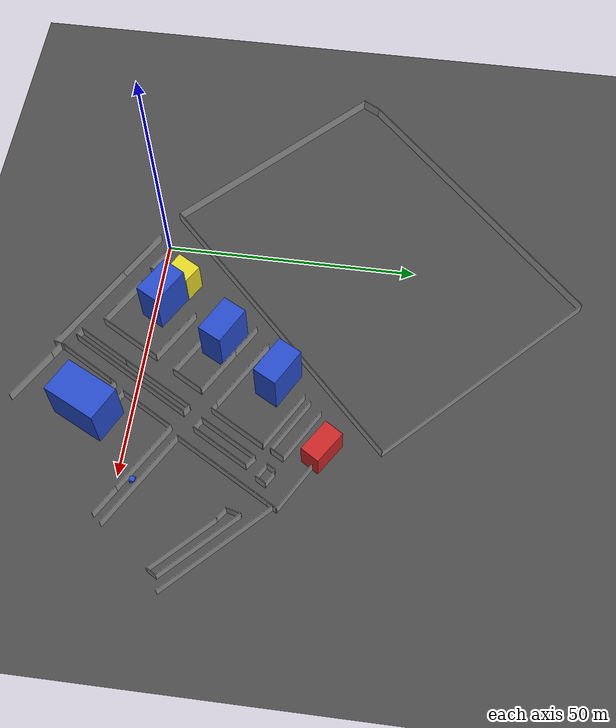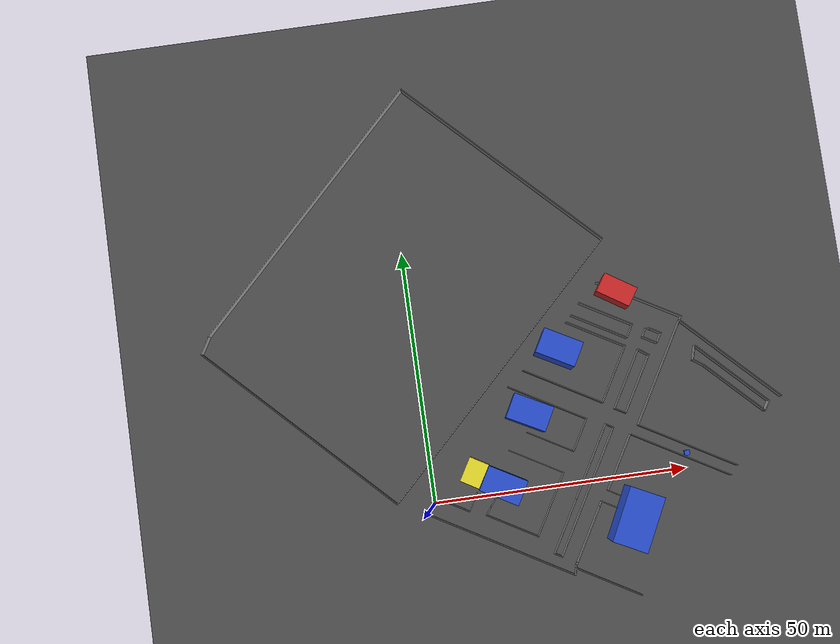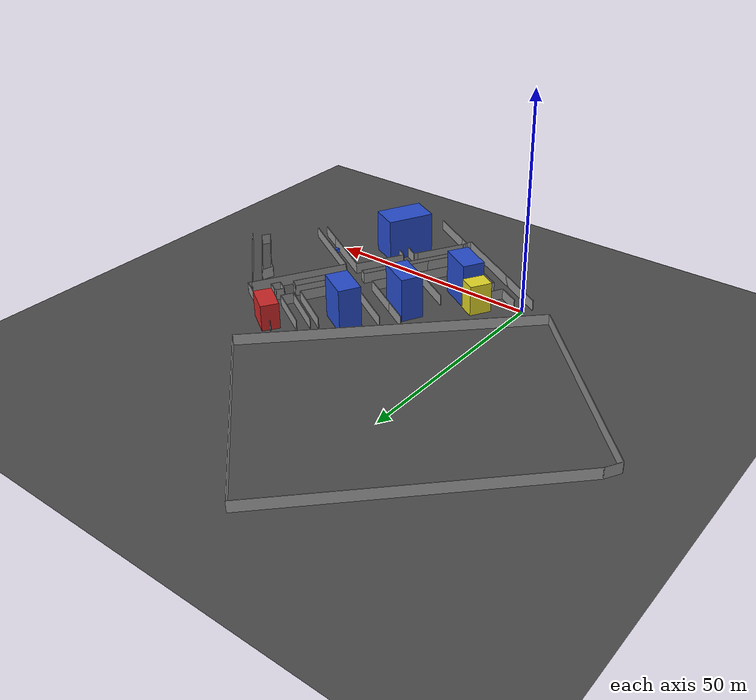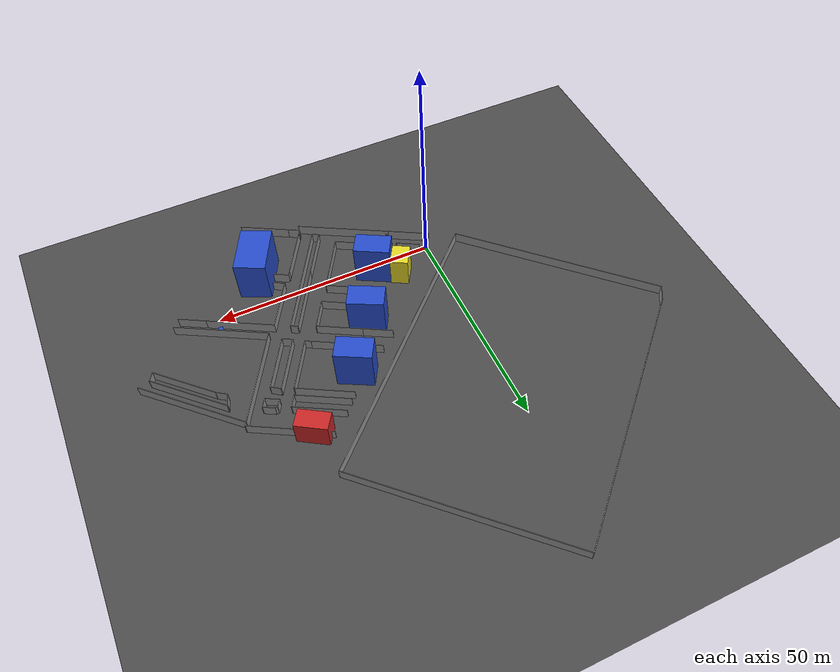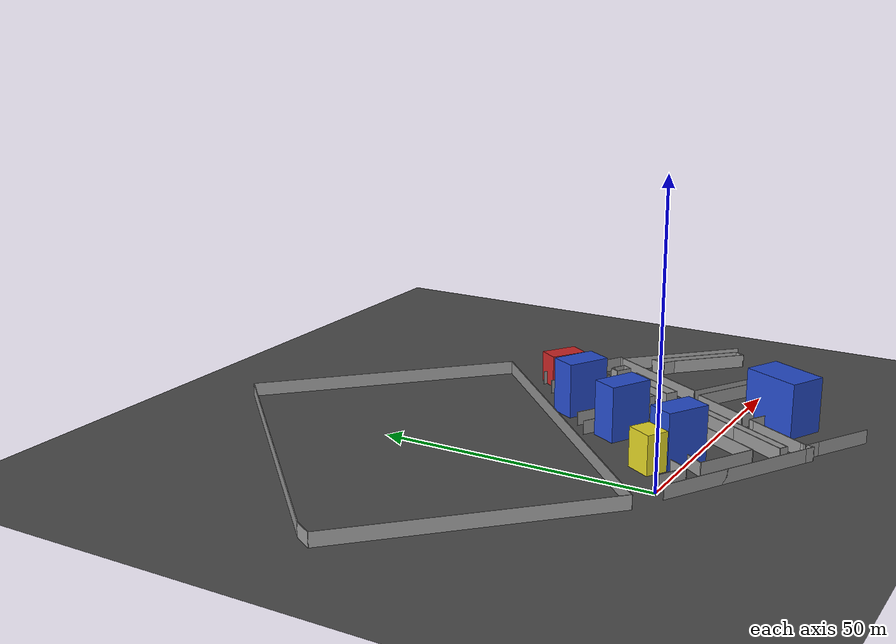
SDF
<sdf version="1.6">
 <world name="default">
  <light name="sun" type="directional">
   <pose>0 0 10 0 -0 0</pose>
   <diffuse>0.8 0.8 0.8 1</diffuse>
   <specular>0.2 0.2 0.2 1</specular>
   <attenuation>
    <range>1000</range>
    <constant>0.9</constant>
    <linear>0.01</linear>
    <quadratic>0.001</quadratic>
   </attenuation>
   <direction>-0.5 0.1 -0.9</direction>
  </light>
  <model name="ground_plane">
   <static>1</static>
   <link name="link">
    <collision name="collision">
     <geometry><plane><normal>0 0 1</normal><size>150 150</size></plane></geometry>
     <surface>
      <contact><collide_bitmask>65535</collide_bitmask></contact>
      <friction><ode><mu>0.6</mu><mu2>0.5</mu2></ode></friction>
     </surface>
    </collision>
    <visual name="visual">
     <cast_shadows>0</cast_shadows>
     <geometry><plane><normal>0 0 1</normal><size>150 150</size></plane></geometry>
     <material><ambient>0.1 0.1 0.1 1</ambient><diffuse>0.3 0.3 0.3 1</diffuse></material>
    </visual>
   </link>
  </model>
  <gravity>0 0 -9.8</gravity>
  <magnetic_field>6e-06 2.3e-05 -4.2e-05</magnetic_field>
  <atmosphere type="adiabatic"/>
  <physics name="default_physics" default="0" type="ode">
   <max_step_size>0.001</max_step_size>
   <real_time_factor>1</real_time_factor>
   <real_time_update_rate>1000</real_time_update_rate>
  </physics>
  <scene><ambient>0.4 0.4 0.4 1</ambient><background>0.7 0.7 0.7 1</background><shadows>1</shadows></scene>
  <audio><device>default</device></audio>
  <spherical_coordinates>
   <surface_model>EARTH_WGS84</surface_model>
   <latitude_deg>0</latitude_deg>
   <longitude_deg>0</longitude_deg>
   <elevation>0</elevation>
   <heading_deg>0</heading_deg>
  </spherical_coordinates>
  <model name="Uni">
   <pose>8.53402 4.99166 3.5 -0 -0 -0.530443</pose>
   <link name="link">
    <inertial>
     <mass>1</mass>
     <inertia>
      <ixx>0.166667</ixx>
      <ixy>0</ixy>
      <ixz>0</ixz>
      <iyy>0.166667</iyy>
      <iyz>0</iyz>
      <izz>0.166667</izz>
     </inertia>
    </inertial>
    <collision name="collision"><geometry><box><size>4 5 7</size></box></geometry></collision>
    <visual name="visual">
     <geometry><box><size>4 5 7</size></box></geometry>
     <material>
      <script><name>Gazebo/Yellow</name><uri>file://media/materials/scripts/gazebo.material</uri></script>
     </material>
    </visual>
   </link>
  </model>
  <model name="Bus">
   <pose>50.53 2.95 0.5 0 -0 0</pose>
   <link name="link">
    <inertial>
     <mass>1</mass>
     <inertia>
      <ixx>0.166667</ixx>
      <ixy>0</ixy>
      <ixz>0</ixz>
      <iyy>0.166667</iyy>
      <iyz>0</iyz>
      <izz>0.166667</izz>
     </inertia>
    </inertial>
    <collision name="collision"><geometry><box><size>1 1 1</size></box></geometry></collision>
    <visual name="visual">
     <geometry><box><size>1 1 1</size></box></geometry>
     <material>
      <script><name>Gazebo/Blue</name><uri>file://media/materials/scripts/gazebo.material</uri></script>
     </material>
    </visual>
   </link>
  </model>
  <model name="NTD">
   <pose>41.0202 36.3528 3.00001 1.5708 7e-06 0.996718</pose>
   <link name="link">
    <inertial>
     <mass>1</mass>
     <inertia>
      <ixx>0.166667</ixx>
      <ixy>0</ixy>
      <ixz>0</ixz>
      <iyy>0.166667</iyy>
      <iyz>0</iyz>
      <izz>0.166667</izz>
     </inertia>
    </inertial>
    <collision name="collision"><geometry><box><size>4 6 7</size></box></geometry></collision>
    <visual name="visual">
     <geometry><box><size>4 6 7</size></box></geometry>
     <material>
      <script><name>Gazebo/Red</name><uri>file://media/materials/scripts/gazebo.material</uri></script>
     </material>
    </visual>
   </link>
  </model>
  <model name="CS2">
   <pose>-0.8382 41.9333 0 0 -0 0</pose>
   <link name="Wall_13">
    <collision name="Wall_13_Collision">
     <geometry><box><size>66.49 0.15 2.5</size></box></geometry>
     <pose>0 0 1.25 0 -0 0</pose>
    </collision>
    <visual name="Wall_13_Visual">
     <pose>0 0 1.25 0 -0 0</pose>
     <geometry><box><size>66.49 0.15 2.5</size></box></geometry>
     <material>
      <script><uri>file://media/materials/scripts/gazebo.material</uri><name>Gazebo/Grey</name></script>
      <ambient>1 1 1 1</ambient>
     </material>
     <meta><layer>0</layer></meta>
    </visual>
    <pose>17.2712 -17.8518 0 0 -0 0.775389</pose>
   </link>
   <link name="Wall_14">
    <collision name="Wall_14_Collision">
     <geometry><box><size>50.6606 0.15 2.5</size></box></geometry>
     <pose>0 0 1.25 0 -0 0</pose>
    </collision>
    <visual name="Wall_14_Visual">
     <pose>0 0 1.25 0 -0 0</pose>
     <geometry><box><size>50.6606 0.15 2.5</size></box></geometry>
     <material>
      <script><uri>file://media/materials/scripts/gazebo.material</uri><name>Gazebo/Grey</name></script>
      <ambient>1 1 1 1</ambient>
     </material>
     <meta><layer>0</layer></meta>
    </visual>
    <pose>23.095 23.2189 0 0 -0 2.35656</pose>
   </link>
   <link name="Wall_15">
    <collision name="Wall_15_Collision">
     <geometry><box><size>62.75 0.15 2.5</size></box></geometry>
     <pose>0 0 1.25 0 -0 0</pose>
    </collision>
    <visual name="Wall_15_Visual">
     <pose>0 0 1.25 0 -0 0</pose>
     <geometry><box><size>62.75 0.15 2.5</size></box></geometry>
     <material>
      <script><uri>file://media/materials/scripts/gazebo.material</uri><name>Gazebo/Grey</name></script>
      <ambient>1 1 1 1</ambient>
     </material>
     <meta><layer>0</layer></meta>
    </visual>
    <pose>-16.9022 18.9382 0 0 -0 -2.35619</pose>
   </link>
   <link name="Wall_16">
    <collision name="Wall_16_Collision">
     <geometry><box><size>4 0.15 2.5</size></box></geometry>
     <pose>0 0 1.25 0 -0 0</pose>
    </collision>
    <visual name="Wall_16_Visual">
     <pose>0 0 1.25 0 -0 0</pose>
     <geometry><box><size>4 0.15 2.5</size></box></geometry>
     <material>
      <script><uri>file://media/materials/scripts/gazebo.material</uri><name>Gazebo/Grey</name></script>
      <ambient>1 1 1 1</ambient>
     </material>
     <meta><layer>0</layer></meta>
    </visual>
    <pose>-39.9972 -4.86136 0 0 -0 -2.0944</pose>
   </link>
   <link name="Wall_17">
    <collision name="Wall_17_Collision">
     <geometry><box><size>49 0.15 2.5</size></box></geometry>
     <pose>0 0 1.25 0 -0 0</pose>
    </collision>
    <visual name="Wall_17_Visual">
     <pose>0 0 1.25 0 -0 0</pose>
     <geometry><box><size>49 0.15 2.5</size></box></geometry>
     <material>
      <script><uri>file://media/materials/scripts/gazebo.material</uri><name>Gazebo/Grey</name></script>
      <ambient>1 1 1 1</ambient>
     </material>
     <meta><layer>0</layer></meta>
    </visual>
    <pose>-23.6886 -23.7995 0 0 -0 -0.785398</pose>
   </link>
   <static>1</static>
  </model>
  <model name="CS2_0">
   <pose>36.1595 6.56727 0 0 -0 0</pose>
   <link name="Wall_10">
    <collision name="Wall_10_Collision">
     <geometry><box><size>3.86374 0.15 2.5</size></box></geometry>
     <pose>0 0 1.25 0 -0 0</pose>
    </collision>
    <visual name="Wall_10_Visual">
     <pose>0 0 1.25 0 -0 0</pose>
     <geometry><box><size>3.86374 0.15 2.5</size></box></geometry>
     <material>
      <script><uri>file://media/materials/scripts/gazebo.material</uri><name>Gazebo/Grey</name></script>
      <ambient>1 1 1 1</ambient>
     </material>
     <meta><layer>0</layer></meta>
    </visual>
    <pose>-25.3717 -8.70169 0 0 -0 -2.21109</pose>
   </link>
   <link name="Wall_12">
    <collision name="Wall_12_Collision">
     <geometry><box><size>11 0.15 2.5</size></box></geometry>
     <pose>0 0 1.25 0 -0 0</pose>
    </collision>
    <visual name="Wall_12_Visual">
     <pose>0 0 1.25 0 -0 0</pose>
     <geometry><box><size>11 0.15 2.5</size></box></geometry>
     <material>
      <script><uri>file://media/materials/scripts/gazebo.material</uri><name>Gazebo/Grey</name></script>
      <ambient>1 1 1 1</ambient>
     </material>
     <meta><layer>0</layer></meta>
    </visual>
    <pose>-21.7131 -12.9032 0 0 -0 -0.523599</pose>
   </link>
   <link name="Wall_15">
    <collision name="Wall_15_Collision">
     <geometry><box><size>13.5 0.15 2.5</size></box></geometry>
     <pose>0 0 1.25 0 -0 0</pose>
    </collision>
    <visual name="Wall_15_Visual">
     <pose>0 0 1.25 0 -0 0</pose>
     <geometry><box><size>13.5 0.15 2.5</size></box></geometry>
     <material>
      <script><uri>file://media/materials/scripts/gazebo.material</uri><name>Gazebo/Grey</name></script>
      <ambient>1 1 1 1</ambient>
     </material>
     <meta><layer>0</layer></meta>
    </visual>
    <pose>-13.6774 -9.83503 0 0 -0 1.0472</pose>
   </link>
   <link name="Wall_16">
    <collision name="Wall_16_Collision">
     <geometry><box><size>11.75 0.15 2.5</size></box></geometry>
     <pose>0 0 1.25 0 -0 0</pose>
    </collision>
    <visual name="Wall_16_Visual">
     <pose>0 0 1.25 0 -0 0</pose>
     <geometry><box><size>11.75 0.15 2.5</size></box></geometry>
     <material>
      <script><uri>file://media/materials/scripts/gazebo.material</uri><name>Gazebo/Grey</name></script>
      <ambient>1 1 1 1</ambient>
     </material>
     <meta><layer>0</layer></meta>
    </visual>
    <pose>-15.3629 -1.15431 0 0 -0 2.61799</pose>
   </link>
   <link name="Wall_22">
    <collision name="Wall_22_Collision">
     <geometry><box><size>15.959 0.15 2.5</size></box></geometry>
     <pose>0 0 1.25 0 -0 0</pose>
    </collision>
    <visual name="Wall_22_Visual">
     <pose>0 0 1.25 0 -0 0</pose>
     <geometry><box><size>15.959 0.15 2.5</size></box></geometry>
     <material>
      <script><uri>file://media/materials/scripts/gazebo.material</uri><name>Gazebo/Grey</name></script>
      <ambient>1 1 1 1</ambient>
     </material>
     <meta><layer>0</layer></meta>
    </visual>
    <pose>-4.71453 -2.66285 0 0 -0 1.05066</pose>
   </link>
   <link name="Wall_26">
    <collision name="Wall_26_Collision">
     <geometry><box><size>11.5 0.15 2.5</size></box></geometry>
     <pose>0 0 1.25 0 -0 0</pose>
    </collision>
    <visual name="Wall_26_Visual">
     <pose>0 0 1.25 0 -0 0</pose>
     <geometry><box><size>11.5 0.15 2.5</size></box></geometry>
     <material>
      <script><uri>file://media/materials/scripts/gazebo.material</uri><name>Gazebo/Grey</name></script>
      <ambient>1 1 1 1</ambient>
     </material>
     <meta><layer>0</layer></meta>
    </visual>
    <pose>-11.4806 -14.4367 0 0 -0 -2.0944</pose>
   </link>
   <link name="Wall_27">
    <collision name="Wall_27_Collision">
     <geometry><box><size>1.75 0.15 2.5</size></box></geometry>
     <pose>0 0 1.25 0 -0 0</pose>
    </collision>
    <visual name="Wall_27_Visual">
     <pose>0 0 1.25 0 -0 0</pose>
     <geometry><box><size>1.75 0.15 2.5</size></box></geometry>
     <material>
      <script><uri>file://media/materials/scripts/gazebo.material</uri><name>Gazebo/Grey</name></script>
      <ambient>1 1 1 1</ambient>
     </material>
     <meta><layer>0</layer></meta>
    </visual>
    <pose>-13.6252 -19.7514 0 0 -0 -0.523599</pose>
   </link>
   <link name="Wall_28">
    <collision name="Wall_28_Collision">
     <geometry><box><size>27.25 0.15 2.5</size></box></geometry>
     <pose>0 0 1.25 0 -0 0</pose>
    </collision>
    <visual name="Wall_28_Visual">
     <pose>0 0 1.25 0 -0 0</pose>
     <geometry><box><size>27.25 0.15 2.5</size></box></geometry>
     <material>
      <script><uri>file://media/materials/scripts/gazebo.material</uri><name>Gazebo/Grey</name></script>
      <ambient>1 1 1 1</ambient>
     </material>
     <meta><layer>0</layer></meta>
    </visual>
    <pose>-6.15741 -8.41673 0 0 -0 1.0472</pose>
   </link>
   <link name="Wall_30">
    <collision name="Wall_30_Collision">
     <geometry><box><size>1.80578 0.15 2.5</size></box></geometry>
     <pose>0 0 1.25 0 -0 0</pose>
    </collision>
    <visual name="Wall_30_Visual">
     <pose>0 0 1.25 0 -0 0</pose>
     <geometry><box><size>1.80578 0.15 2.5</size></box></geometry>
     <material>
      <script><uri>file://media/materials/scripts/gazebo.material</uri><name>Gazebo/Grey</name></script>
      <ambient>1 1 1 1</ambient>
     </material>
     <meta><layer>0</layer></meta>
    </visual>
    <pose>-0.084209 3.7571 0 0 -0 -0.559178</pose>
   </link>
   <link name="Wall_34">
    <collision name="Wall_34_Collision">
     <geometry><box><size>12.75 0.15 2.5</size></box></geometry>
     <pose>0 0 1.25 0 -0 0</pose>
    </collision>
    <visual name="Wall_34_Visual">
     <pose>0 0 1.25 0 -0 0</pose>
     <geometry><box><size>12.75 0.15 2.5</size></box></geometry>
     <material>
      <script><uri>file://media/materials/scripts/gazebo.material</uri><name>Gazebo/Grey</name></script>
      <ambient>1 1 1 1</ambient>
     </material>
     <meta><layer>0</layer></meta>
    </visual>
    <pose>-7.49798 -17.018 0 0 -0 1.0472</pose>
   </link>
   <link name="Wall_35">
    <collision name="Wall_35_Collision">
     <geometry><box><size>1.25 0.15 2.5</size></box></geometry>
     <pose>0 0 1.25 0 -0 0</pose>
    </collision>
    <visual name="Wall_35_Visual">
     <pose>0 0 1.25 0 -0 0</pose>
     <geometry><box><size>1.25 0.15 2.5</size></box></geometry>
     <material>
      <script><uri>file://media/materials/scripts/gazebo.material</uri><name>Gazebo/Grey</name></script>
      <ambient>1 1 1 1</ambient>
     </material>
     <meta><layer>0</layer></meta>
    </visual>
    <pose>-4.07299 -11.0858 0 0 -0 1.0472</pose>
   </link>
   <link name="Wall_36">
    <collision name="Wall_36_Collision">
     <geometry><box><size>3.5 0.15 2.5</size></box></geometry>
     <pose>0 0 1.25 0 -0 0</pose>
    </collision>
    <visual name="Wall_36_Visual">
     <pose>0 0 1.25 0 -0 0</pose>
     <geometry><box><size>3.5 0.15 2.5</size></box></geometry>
     <material>
      <script><uri>file://media/materials/scripts/gazebo.material</uri><name>Gazebo/Grey</name></script>
      <ambient>1 1 1 1</ambient>
     </material>
     <meta><layer>0</layer></meta>
    </visual>
    <pose>-2.34739 -11.4469 0 0 -0 -0.523599</pose>
   </link>
   <link name="Wall_38">
    <collision name="Wall_38_Collision">
     <geometry><box><size>2.75 0.15 2.5</size></box></geometry>
     <pose>0 0 1.25 0 -0 0</pose>
    </collision>
    <visual name="Wall_38_Visual">
     <pose>0 0 1.25 0 -0 0</pose>
     <geometry><box><size>2.75 0.15 2.5</size></box></geometry>
     <material>
      <script><uri>file://media/materials/scripts/gazebo.material</uri><name>Gazebo/Grey</name></script>
      <ambient>1 1 1 1</ambient>
     </material>
     <meta><layer>0</layer></meta>
    </visual>
    <pose>-1.08716 -9.34887 0 0 -0 -0.523599</pose>
   </link>
   <link name="Wall_40">
    <collision name="Wall_40_Collision">
     <geometry><box><size>12 0.15 2.5</size></box></geometry>
     <pose>0 0 1.25 0 -0 0</pose>
    </collision>
    <visual name="Wall_40_Visual">
     <pose>0 0 1.25 0 -0 0</pose>
     <geometry><box><size>12 0.15 2.5</size></box></geometry>
     <material>
      <script><uri>file://media/materials/scripts/gazebo.material</uri><name>Gazebo/Grey</name></script>
      <ambient>1 1 1 1</ambient>
     </material>
     <meta><layer>0</layer></meta>
    </visual>
    <pose>0.749501 -3.56767 0 0 -0 1.0472</pose>
   </link>
   <link name="Wall_41">
    <collision name="Wall_41_Collision">
     <geometry><box><size>15.25 0.15 2.5</size></box></geometry>
     <pose>0 0 1.25 0 -0 0</pose>
    </collision>
    <visual name="Wall_41_Visual">
     <pose>0 0 1.25 0 -0 0</pose>
     <geometry><box><size>15.25 0.15 2.5</size></box></geometry>
     <material>
      <script><uri>file://media/materials/scripts/gazebo.material</uri><name>Gazebo/Grey</name></script>
      <ambient>1 1 1 1</ambient>
     </material>
     <meta><layer>0</layer></meta>
    </visual>
    <pose>10.2505 -2.21147 0 0 -0 -0.523599</pose>
   </link>
   <link name="Wall_42">
    <collision name="Wall_42_Collision">
     <geometry><box><size>6.25 0.15 2.5</size></box></geometry>
     <pose>0 0 1.25 0 -0 0</pose>
    </collision>
    <visual name="Wall_42_Visual">
     <pose>0 0 1.25 0 -0 0</pose>
     <geometry><box><size>6.25 0.15 2.5</size></box></geometry>
     <material>
      <script><uri>file://media/materials/scripts/gazebo.material</uri><name>Gazebo/Grey</name></script>
      <ambient>1 1 1 1</ambient>
     </material>
     <meta><layer>0</layer></meta>
    </visual>
    <pose>19.4304 -7.51147 0 0 -0 -0.523599</pose>
   </link>
   <link name="Wall_44">
    <collision name="Wall_44_Collision">
     <geometry><box><size>21 0.15 2.5</size></box></geometry>
     <pose>0 0 1.25 0 -0 0</pose>
    </collision>
    <visual name="Wall_44_Visual">
     <pose>0 0 1.25 0 -0 0</pose>
     <geometry><box><size>21 0.15 2.5</size></box></geometry>
     <material>
      <script><uri>file://media/materials/scripts/gazebo.material</uri><name>Gazebo/Grey</name></script>
      <ambient>1 1 1 1</ambient>
     </material>
     <meta><layer>0</layer></meta>
    </visual>
    <pose>14.5582 -2.09779 0 0 -0 -0.523599</pose>
   </link>
   <link name="Wall_46">
    <collision name="Wall_46_Collision">
     <geometry><box><size>22.5 0.15 2.5</size></box></geometry>
     <pose>0 0 1.25 0 -0 0</pose>
    </collision>
    <visual name="Wall_46_Visual">
     <pose>0 0 1.25 0 -0 0</pose>
     <geometry><box><size>22.5 0.15 2.5</size></box></geometry>
     <material>
      <script><uri>file://media/materials/scripts/gazebo.material</uri><name>Gazebo/Grey</name></script>
      <ambient>1 1 1 1</ambient>
     </material>
     <meta><layer>0</layer></meta>
    </visual>
    <pose>11.1174 12.7925 0 0 -0 1.0472</pose>
   </link>
   <link name="Wall_47">
    <collision name="Wall_47_Collision">
     <geometry><box><size>25 0.15 2.5</size></box></geometry>
     <pose>0 0 1.25 0 -0 0</pose>
    </collision>
    <visual name="Wall_47_Visual">
     <pose>0 0 1.25 0 -0 0</pose>
     <geometry><box><size>25 0.15 2.5</size></box></geometry>
     <material>
      <script><uri>file://media/materials/scripts/gazebo.material</uri><name>Gazebo/Grey</name></script>
      <ambient>1 1 1 1</ambient>
     </material>
     <meta><layer>0</layer></meta>
    </visual>
    <pose>25.4907 13.6846 0 0 -0 -0.785398</pose>
   </link>
   <link name="Wall_5">
    <collision name="Wall_5_Collision">
     <geometry><box><size>5.5 0.15 2.5</size></box></geometry>
     <pose>0 0 1.25 0 -0 0</pose>
    </collision>
    <visual name="Wall_5_Visual">
     <pose>0 0 1.25 0 -0 0</pose>
     <geometry><box><size>5.5 0.15 2.5</size></box></geometry>
     <material>
      <script><uri>file://media/materials/scripts/gazebo.material</uri><name>Gazebo/Grey</name></script>
      <ambient>1 1 1 1</ambient>
     </material>
     <meta><layer>0</layer></meta>
    </visual>
    <pose>-31.9635 -7.65807 0 0 -0 -0.523599</pose>
   </link>
   <link name="Wall_7">
    <collision name="Wall_7_Collision">
     <geometry><box><size>4 0.15 2.5</size></box></geometry>
     <pose>0 0 1.25 0 -0 0</pose>
    </collision>
    <visual name="Wall_7_Visual">
     <pose>0 0 1.25 0 -0 0</pose>
     <geometry><box><size>4 0.15 2.5</size></box></geometry>
     <material>
      <script><uri>file://media/materials/scripts/gazebo.material</uri><name>Gazebo/Grey</name></script>
      <ambient>1 1 1 1</ambient>
     </material>
     <meta><layer>0</layer></meta>
    </visual>
    <pose>-28.6844 -7.32847 0 0 -0 1.0472</pose>
   </link>
   <static>1</static>
  </model>
  <model name="CS2_1">
   <pose>33.1842 7.9156 0 0 -0 0</pose>
   <link name="Wall_101">
    <collision name="Wall_101_Collision">
     <geometry><box><size>11.25 0.15 2.5</size></box></geometry>
     <pose>0 0 1.25 0 -0 0</pose>
    </collision>
    <visual name="Wall_101_Visual">
     <pose>0 0 1.25 0 -0 0</pose>
     <geometry><box><size>11.25 0.15 2.5</size></box></geometry>
     <material>
      <script><uri>file://media/materials/scripts/gazebo.material</uri><name>Gazebo/Grey</name></script>
      <ambient>1 1 1 1</ambient>
     </material>
     <meta><layer>0</layer></meta>
    </visual>
    <pose>-0.55685 -28.1163 0 0 -0 -0.523599</pose>
   </link>
   <link name="Wall_103">
    <collision name="Wall_103_Collision">
     <geometry><box><size>2.75 0.15 2.5</size></box></geometry>
     <pose>0 0 1.25 0 -0 0</pose>
    </collision>
    <visual name="Wall_103_Visual">
     <pose>0 0 1.25 0 -0 0</pose>
     <geometry><box><size>2.75 0.15 2.5</size></box></geometry>
     <material>
      <script><uri>file://media/materials/scripts/gazebo.material</uri><name>Gazebo/Grey</name></script>
      <ambient>1 1 1 1</ambient>
     </material>
     <meta><layer>0</layer></meta>
    </visual>
    <pose>-6.48913 -24.6913 0 0 -0 2.61799</pose>
   </link>
   <link name="Wall_108">
    <collision name="Wall_108_Collision">
     <geometry><box><size>29.25 0.15 2.5</size></box></geometry>
     <pose>0 0 1.25 0 -0 0</pose>
    </collision>
    <visual name="Wall_108_Visual">
     <pose>0 0 1.25 0 -0 0</pose>
     <geometry><box><size>29.25 0.15 2.5</size></box></geometry>
     <material>
      <script><uri>file://media/materials/scripts/gazebo.material</uri><name>Gazebo/Grey</name></script>
      <ambient>1 1 1 1</ambient>
     </material>
     <meta><layer>0</layer></meta>
    </visual>
    <pose>-22.0792 -17.1668 0 0 -0 2.61799</pose>
   </link>
   <link name="Wall_109">
    <collision name="Wall_109_Collision">
     <geometry><box><size>31 0.15 2.5</size></box></geometry>
     <pose>0 0 1.25 0 -0 0</pose>
    </collision>
    <visual name="Wall_109_Visual">
     <pose>0 0 1.25 0 -0 0</pose>
     <geometry><box><size>31 0.15 2.5</size></box></geometry>
     <material>
      <script><uri>file://media/materials/scripts/gazebo.material</uri><name>Gazebo/Grey</name></script>
      <ambient>1 1 1 1</ambient>
     </material>
     <meta><layer>0</layer></meta>
    </visual>
    <pose>-21.3214 -17.6043 0 0 -0 -0.523599</pose>
   </link>
   <link name="Wall_110">
    <collision name="Wall_110_Collision">
     <geometry><box><size>2.5 0.15 2.5</size></box></geometry>
     <pose>0 0 1.25 0 -0 0</pose>
    </collision>
    <visual name="Wall_110_Visual">
     <pose>0 0 1.25 0 -0 0</pose>
     <geometry><box><size>2.5 0.15 2.5</size></box></geometry>
     <material>
      <script><uri>file://media/materials/scripts/gazebo.material</uri><name>Gazebo/Grey</name></script>
      <ambient>1 1 1 1</ambient>
     </material>
     <meta><layer>0</layer></meta>
    </visual>
    <pose>-7.65887 -24.1819 0 0 -0 1.309</pose>
   </link>
   <link name="Wall_114">
    <collision name="Wall_114_Collision">
     <geometry><box><size>18.25 0.15 2.5</size></box></geometry>
     <pose>0 0 1.25 0 -0 0</pose>
    </collision>
    <visual name="Wall_114_Visual">
     <pose>0 0 1.25 0 -0 0</pose>
     <geometry><box><size>18.25 0.15 2.5</size></box></geometry>
     <material>
      <script><uri>file://media/materials/scripts/gazebo.material</uri><name>Gazebo/Grey</name></script>
      <ambient>1 1 1 1</ambient>
     </material>
     <meta><layer>0</layer></meta>
    </visual>
    <pose>12.3099 26.3663 0 0 -0 -0.523599</pose>
   </link>
   <link name="Wall_115">
    <collision name="Wall_115_Collision">
     <geometry><box><size>2.25 0.15 2.5</size></box></geometry>
     <pose>0 0 1.25 0 -0 0</pose>
    </collision>
    <visual name="Wall_115_Visual">
     <pose>0 0 1.25 0 -0 0</pose>
     <geometry><box><size>2.25 0.15 2.5</size></box></geometry>
     <material>
      <script><uri>file://media/materials/scripts/gazebo.material</uri><name>Gazebo/Grey</name></script>
      <ambient>1 1 1 1</ambient>
     </material>
     <meta><layer>0</layer></meta>
    </visual>
    <pose>19.6224 20.932 0 0 -0 -2.0944</pose>
   </link>
   <link name="Wall_119">
    <collision name="Wall_119_Collision">
     <geometry><box><size>15 0.15 2.5</size></box></geometry>
     <pose>0 0 1.25 0 -0 0</pose>
    </collision>
    <visual name="Wall_119_Visual">
     <pose>0 0 1.25 0 -0 0</pose>
     <geometry><box><size>15 0.15 2.5</size></box></geometry>
     <material>
      <script><uri>file://media/materials/scripts/gazebo.material</uri><name>Gazebo/Grey</name></script>
      <ambient>1 1 1 1</ambient>
     </material>
     <meta><layer>0</layer></meta>
    </visual>
    <pose>28.376 6.36069 0 0 -0 -0.785398</pose>
   </link>
   <link name="Wall_120">
    <collision name="Wall_120_Collision">
     <geometry><box><size>2.25 0.15 2.5</size></box></geometry>
     <pose>0 0 1.25 0 -0 0</pose>
    </collision>
    <visual name="Wall_120_Visual">
     <pose>0 0 1.25 0 -0 0</pose>
     <geometry><box><size>2.25 0.15 2.5</size></box></geometry>
     <material>
      <script><uri>file://media/materials/scripts/gazebo.material</uri><name>Gazebo/Grey</name></script>
      <ambient>1 1 1 1</ambient>
     </material>
     <meta><layer>0</layer></meta>
    </visual>
    <pose>34.1513 2.01974 0 0 -0 1.0472</pose>
   </link>
   <link name="Wall_121">
    <collision name="Wall_121_Collision">
     <geometry><box><size>18.25 0.15 2.5</size></box></geometry>
     <pose>0 0 1.25 0 -0 0</pose>
    </collision>
    <visual name="Wall_121_Visual">
     <pose>0 0 1.25 0 -0 0</pose>
     <geometry><box><size>18.25 0.15 2.5</size></box></geometry>
     <material>
      <script><uri>file://media/materials/scripts/gazebo.material</uri><name>Gazebo/Grey</name></script>
      <ambient>1 1 1 1</ambient>
     </material>
     <meta><layer>0</layer></meta>
    </visual>
    <pose>28.2769 9.32839 0 0 -0 2.35619</pose>
   </link>
   <link name="Wall_122">
    <collision name="Wall_122_Collision">
     <geometry><box><size>3 0.15 2.5</size></box></geometry>
     <pose>0 0 1.25 0 -0 0</pose>
    </collision>
    <visual name="Wall_122_Visual">
     <pose>0 0 1.25 0 -0 0</pose>
     <geometry><box><size>3 0.15 2.5</size></box></geometry>
     <material>
      <script><uri>file://media/materials/scripts/gazebo.material</uri><name>Gazebo/Grey</name></script>
      <ambient>1 1 1 1</ambient>
     </material>
     <meta><layer>0</layer></meta>
    </visual>
    <pose>21.5088 14.3513 0 0 -0 -1.8326</pose>
   </link>
   <link name="Wall_123">
    <collision name="Wall_123_Collision">
     <geometry><box><size>2.55899 0.15 2.5</size></box></geometry>
     <pose>0 0 1.25 0 -0 0</pose>
    </collision>
    <visual name="Wall_123_Visual">
     <pose>0 0 1.25 0 -0 0</pose>
     <geometry><box><size>2.55899 0.15 2.5</size></box></geometry>
     <material>
      <script><uri>file://media/materials/scripts/gazebo.material</uri><name>Gazebo/Grey</name></script>
      <ambient>1 1 1 1</ambient>
     </material>
     <meta><layer>0</layer></meta>
    </visual>
    <pose>22.1329 12.2929 0 0 -0 -0.601833</pose>
   </link>
   <link name="Wall_65">
    <collision name="Wall_65_Collision">
     <geometry><box><size>10 0.15 2.5</size></box></geometry>
     <pose>0 0 1.25 0 -0 0</pose>
    </collision>
    <visual name="Wall_65_Visual">
     <pose>0 0 1.25 0 -0 0</pose>
     <geometry><box><size>10 0.15 2.5</size></box></geometry>
     <material>
      <script><uri>file://media/materials/scripts/gazebo.material</uri><name>Gazebo/Grey</name></script>
      <ambient>1 1 1 1</ambient>
     </material>
     <meta><layer>0</layer></meta>
    </visual>
    <pose>-9.08424 0.921832 0 0 -0 -0.523599</pose>
   </link>
   <link name="Wall_66">
    <collision name="Wall_66_Collision">
     <geometry><box><size>7 0.15 2.5</size></box></geometry>
     <pose>0 0 1.25 0 -0 0</pose>
    </collision>
    <visual name="Wall_66_Visual">
     <pose>0 0 1.25 0 -0 0</pose>
     <geometry><box><size>7 0.15 2.5</size></box></geometry>
     <material>
      <script><uri>file://media/materials/scripts/gazebo.material</uri><name>Gazebo/Grey</name></script>
      <ambient>1 1 1 1</ambient>
     </material>
     <meta><layer>0</layer></meta>
    </visual>
    <pose>-3.10657 1.42547 0 0 -0 1.0472</pose>
   </link>
   <link name="Wall_67">
    <collision name="Wall_67_Collision">
     <geometry><box><size>10.25 0.15 2.5</size></box></geometry>
     <pose>0 0 1.25 0 -0 0</pose>
    </collision>
    <visual name="Wall_67_Visual">
     <pose>0 0 1.25 0 -0 0</pose>
     <geometry><box><size>10.25 0.15 2.5</size></box></geometry>
     <material>
      <script><uri>file://media/materials/scripts/gazebo.material</uri><name>Gazebo/Grey</name></script>
      <ambient>1 1 1 1</ambient>
     </material>
     <meta><layer>0</layer></meta>
    </visual>
    <pose>-5.7675 6.91661 0 0 -0 2.61799</pose>
   </link>
   <link name="Wall_68">
    <collision name="Wall_68_Collision">
     <geometry><box><size>6.75 0.15 2.5</size></box></geometry>
     <pose>0 0 1.25 0 -0 0</pose>
    </collision>
    <visual name="Wall_68_Visual">
     <pose>0 0 1.25 0 -0 0</pose>
     <geometry><box><size>6.75 0.15 2.5</size></box></geometry>
     <material>
      <script><uri>file://media/materials/scripts/gazebo.material</uri><name>Gazebo/Grey</name></script>
      <ambient>1 1 1 1</ambient>
     </material>
     <meta><layer>0</layer></meta>
    </visual>
    <pose>-12.9988 11.0916 0 0 -0 2.61799</pose>
   </link>
   <link name="Wall_72">
    <collision name="Wall_72_Collision">
     <geometry><box><size>15.75 0.15 2.5</size></box></geometry>
     <pose>0 0 1.25 0 -0 0</pose>
    </collision>
    <visual name="Wall_72_Visual">
     <pose>0 0 1.25 0 -0 0</pose>
     <geometry><box><size>15.75 0.15 2.5</size></box></geometry>
     <material>
      <script><uri>file://media/materials/scripts/gazebo.material</uri><name>Gazebo/Grey</name></script>
      <ambient>1 1 1 1</ambient>
     </material>
     <meta><layer>0</layer></meta>
    </visual>
    <pose>-5.68498 11.6548 0 0 -0 -0.523599</pose>
   </link>
   <link name="Wall_73">
    <collision name="Wall_73_Collision">
     <geometry><box><size>1.5 0.15 2.5</size></box></geometry>
     <pose>0 0 1.25 0 -0 0</pose>
    </collision>
    <visual name="Wall_73_Visual">
     <pose>0 0 1.25 0 -0 0</pose>
     <geometry><box><size>1.5 0.15 2.5</size></box></geometry>
     <material>
      <script><uri>file://media/materials/scripts/gazebo.material</uri><name>Gazebo/Grey</name></script>
      <ambient>1 1 1 1</ambient>
     </material>
     <meta><layer>0</layer></meta>
    </visual>
    <pose>1.65459 7.41732 0 0 -0 -0.523599</pose>
   </link>
   <link name="Wall_74">
    <collision name="Wall_74_Collision">
     <geometry><box><size>12.25 0.15 2.5</size></box></geometry>
     <pose>0 0 1.25 0 -0 0</pose>
    </collision>
    <visual name="Wall_74_Visual">
     <pose>0 0 1.25 0 -0 0</pose>
     <geometry><box><size>12.25 0.15 2.5</size></box></geometry>
     <material>
      <script><uri>file://media/materials/scripts/gazebo.material</uri><name>Gazebo/Grey</name></script>
      <ambient>1 1 1 1</ambient>
     </material>
     <meta><layer>0</layer></meta>
    </visual>
    <pose>5.26416 12.3193 0 0 -0 1.0472</pose>
   </link>
   <link name="Wall_75">
    <collision name="Wall_75_Collision">
     <geometry><box><size>12.75 0.15 2.5</size></box></geometry>
     <pose>0 0 1.25 0 -0 0</pose>
    </collision>
    <visual name="Wall_75_Visual">
     <pose>0 0 1.25 0 -0 0</pose>
     <geometry><box><size>12.75 0.15 2.5</size></box></geometry>
     <material>
      <script><uri>file://media/materials/scripts/gazebo.material</uri><name>Gazebo/Grey</name></script>
      <ambient>1 1 1 1</ambient>
     </material>
     <meta><layer>0</layer></meta>
    </visual>
    <pose>2.83319 20.7087 0 0 -0 2.61799</pose>
   </link>
   <link name="Wall_78">
    <collision name="Wall_78_Collision">
     <geometry><box><size>12 0.15 2.5</size></box></geometry>
     <pose>0 0 1.25 0 -0 0</pose>
    </collision>
    <visual name="Wall_78_Visual">
     <pose>0 0 1.25 0 -0 0</pose>
     <geometry><box><size>12 0.15 2.5</size></box></geometry>
     <material>
      <script><uri>file://media/materials/scripts/gazebo.material</uri><name>Gazebo/Grey</name></script>
      <ambient>1 1 1 1</ambient>
     </material>
     <meta><layer>0</layer></meta>
    </visual>
    <pose>3.73934 22.1022 0 0 -0 -0.523599</pose>
   </link>
   <link name="Wall_79">
    <collision name="Wall_79_Collision">
     <geometry><box><size>3 0.15 2.5</size></box></geometry>
     <pose>0 0 1.25 0 -0 0</pose>
    </collision>
    <visual name="Wall_79_Visual">
     <pose>0 0 1.25 0 -0 0</pose>
     <geometry><box><size>3 0.15 2.5</size></box></geometry>
     <material>
      <script><uri>file://media/materials/scripts/gazebo.material</uri><name>Gazebo/Grey</name></script>
      <ambient>1 1 1 1</ambient>
     </material>
     <meta><layer>0</layer></meta>
    </visual>
    <pose>9.58304 20.3738 0 0 -0 1.0472</pose>
   </link>
   <link name="Wall_80">
    <collision name="Wall_80_Collision">
     <geometry><box><size>11.5 0.15 2.5</size></box></geometry>
     <pose>0 0 1.25 0 -0 0</pose>
    </collision>
    <visual name="Wall_80_Visual">
     <pose>0 0 1.25 0 -0 0</pose>
     <geometry><box><size>11.5 0.15 2.5</size></box></geometry>
     <material>
      <script><uri>file://media/materials/scripts/gazebo.material</uri><name>Gazebo/Grey</name></script>
      <ambient>1 1 1 1</ambient>
     </material>
     <meta><layer>0</layer></meta>
    </visual>
    <pose>5.38084 24.4454 0 0 -0 2.61799</pose>
   </link>
   <link name="Wall_82">
    <collision name="Wall_82_Collision">
     <geometry><box><size>2.75 0.15 2.5</size></box></geometry>
     <pose>0 0 1.25 0 -0 0</pose>
    </collision>
    <visual name="Wall_82_Visual">
     <pose>0 0 1.25 0 -0 0</pose>
     <geometry><box><size>2.75 0.15 2.5</size></box></geometry>
     <material>
      <script><uri>file://media/materials/scripts/gazebo.material</uri><name>Gazebo/Grey</name></script>
      <ambient>1 1 1 1</ambient>
     </material>
     <meta><layer>0</layer></meta>
    </visual>
    <pose>14.527 19.7737 0 0 -0 -0.523599</pose>
   </link>
   <link name="Wall_83">
    <collision name="Wall_83_Collision">
     <geometry><box><size>2.25 0.15 2.5</size></box></geometry>
     <pose>0 0 1.25 0 -0 0</pose>
    </collision>
    <visual name="Wall_83_Visual">
     <pose>0 0 1.25 0 -0 0</pose>
     <geometry><box><size>2.25 0.15 2.5</size></box></geometry>
     <material>
      <script><uri>file://media/materials/scripts/gazebo.material</uri><name>Gazebo/Grey</name></script>
      <ambient>1 1 1 1</ambient>
     </material>
     <meta><layer>0</layer></meta>
    </visual>
    <pose>15.1279 18.2144 0 0 -0 -2.0944</pose>
   </link>
   <link name="Wall_87">
    <collision name="Wall_87_Collision">
     <geometry><box><size>3.25 0.15 2.5</size></box></geometry>
     <pose>0 0 1.25 0 -0 0</pose>
    </collision>
    <visual name="Wall_87_Visual">
     <pose>0 0 1.25 0 -0 0</pose>
     <geometry><box><size>3.25 0.15 2.5</size></box></geometry>
     <material>
      <script><uri>file://media/materials/scripts/gazebo.material</uri><name>Gazebo/Grey</name></script>
      <ambient>1 1 1 1</ambient>
     </material>
     <meta><layer>0</layer></meta>
    </visual>
    <pose>13.2605 18.0801 0 0 -0 2.61799</pose>
   </link>
   <link name="Wall_88">
    <collision name="Wall_88_Collision">
     <geometry><box><size>2 0.15 2.5</size></box></geometry>
     <pose>0 0 1.25 0 -0 0</pose>
    </collision>
    <visual name="Wall_88_Visual">
     <pose>0 0 1.25 0 -0 0</pose>
     <geometry><box><size>2 0.15 2.5</size></box></geometry>
     <material>
      <script><uri>file://media/materials/scripts/gazebo.material</uri><name>Gazebo/Grey</name></script>
      <ambient>1 1 1 1</ambient>
     </material>
     <meta><layer>0</layer></meta>
    </visual>
    <pose>12.3807 19.6562 0 0 -0 1.0472</pose>
   </link>
   <link name="Wall_89">
    <collision name="Wall_89_Collision">
     <geometry><box><size>1 0.15 2.5</size></box></geometry>
     <pose>0 0 1.25 0 -0 0</pose>
    </collision>
    <visual name="Wall_89_Visual">
     <pose>0 0 1.25 0 -0 0</pose>
     <geometry><box><size>1 0.15 2.5</size></box></geometry>
     <material>
      <script><uri>file://media/materials/scripts/gazebo.material</uri><name>Gazebo/Grey</name></script>
      <ambient>1 1 1 1</ambient>
     </material>
     <meta><layer>0</layer></meta>
    </visual>
    <pose>13.2537 20.3472 0 0 -0 -0.261799</pose>
   </link>
   <link name="Wall_92">
    <collision name="Wall_92_Collision">
     <geometry><box><size>12.75 0.15 2.5</size></box></geometry>
     <pose>0 0 1.25 0 -0 0</pose>
    </collision>
    <visual name="Wall_92_Visual">
     <pose>0 0 1.25 0 -0 0</pose>
     <geometry><box><size>12.75 0.15 2.5</size></box></geometry>
     <material>
      <script><uri>file://media/materials/scripts/gazebo.material</uri><name>Gazebo/Grey</name></script>
      <ambient>1 1 1 1</ambient>
     </material>
     <meta><layer>0</layer></meta>
    </visual>
    <pose>7.56783 11.0753 0 0 -0 -2.0944</pose>
   </link>
   <link name="Wall_93">
    <collision name="Wall_93_Collision">
     <geometry><box><size>2.5 0.15 2.5</size></box></geometry>
     <pose>0 0 1.25 0 -0 0</pose>
    </collision>
    <visual name="Wall_93_Visual">
     <pose>0 0 1.25 0 -0 0</pose>
     <geometry><box><size>2.5 0.15 2.5</size></box></geometry>
     <material>
      <script><uri>file://media/materials/scripts/gazebo.material</uri><name>Gazebo/Grey</name></script>
      <ambient>1 1 1 1</ambient>
     </material>
     <meta><layer>0</layer></meta>
    </visual>
    <pose>5.43541 5.03183 0 0 -0 -0.523599</pose>
   </link>
   <link name="Wall_94">
    <collision name="Wall_94_Collision">
     <geometry><box><size>12.5 0.15 2.5</size></box></geometry>
     <pose>0 0 1.25 0 -0 0</pose>
    </collision>
    <visual name="Wall_94_Visual">
     <pose>0 0 1.25 0 -0 0</pose>
     <geometry><box><size>12.5 0.15 2.5</size></box></geometry>
     <material>
      <script><uri>file://media/materials/scripts/gazebo.material</uri><name>Gazebo/Grey</name></script>
      <ambient>1 1 1 1</ambient>
     </material>
     <meta><layer>0</layer></meta>
    </visual>
    <pose>9.54049 9.79204 0 0 -0 1.0472</pose>
   </link>
   <link name="Wall_95">
    <collision name="Wall_95_Collision">
     <geometry><box><size>2.51326 0.15 2.5</size></box></geometry>
     <pose>0 0 1.25 0 -0 0</pose>
    </collision>
    <visual name="Wall_95_Visual">
     <pose>0 0 1.25 0 -0 0</pose>
     <geometry><box><size>2.51326 0.15 2.5</size></box></geometry>
     <material>
      <script><uri>file://media/materials/scripts/gazebo.material</uri><name>Gazebo/Grey</name></script>
      <ambient>1 1 1 1</ambient>
     </material>
     <meta><layer>0</layer></meta>
    </visual>
    <pose>11.6729 15.8355 0 0 -0 2.51201</pose>
   </link>
   <static>1</static>
  </model>
  <model name="H1.1">
   <pose>13.7134 1.8886 5 0 -0 1.05553</pose>
   <link name="link">
    <inertial>
     <mass>1</mass>
     <inertia>
      <ixx>0.166667</ixx>
      <ixy>0</ixy>
      <ixz>0</ixz>
      <iyy>0.166667</iyy>
      <iyz>0</iyz>
      <izz>0.166667</izz>
     </inertia>
    </inertial>
    <collision name="collision"><geometry><box><size>5 8 10</size></box></geometry></collision>
    <visual name="visual">
     <geometry><box><size>5 8 10</size></box></geometry>
     <material>
      <script><name>Gazebo/Blue</name><uri>file://media/materials/scripts/gazebo.material</uri></script>
     </material>
    </visual>
   </link>
  </model>
  <model name="H2.1">
   <pose>20.6163 14.9732 5 -2e-06 -1e-06 -2.05844</pose>
   <link name="link">
    <inertial>
     <mass>1</mass>
     <inertia>
      <ixx>0.166667</ixx>
      <ixy>0</ixy>
      <ixz>0</ixz>
      <iyy>0.166667</iyy>
      <iyz>0</iyz>
      <izz>0.166667</izz>
     </inertia>
    </inertial>
    <collision name="collision"><geometry><box><size>5 8 10</size></box></geometry></collision>
    <visual name="visual">
     <geometry><box><size>5 8 10</size></box></geometry>
     <material>
      <script><name>Gazebo/Blue</name><uri>file://media/materials/scripts/gazebo.material</uri></script>
     </material>
    </visual>
   </link>
  </model>
  <model name="H3.1">
   <pose>27.9842 26.4738 5 -1e-06 1e-06 -2.07443</pose>
   <link name="link">
    <inertial>
     <mass>1</mass>
     <inertia>
      <ixx>0.166667</ixx>
      <ixy>0</ixy>
      <ixz>0</ixz>
      <iyy>0.166667</iyy>
      <iyz>0</iyz>
      <izz>0.166667</izz>
     </inertia>
    </inertial>
    <collision name="collision"><geometry><box><size>5 8 10</size></box></geometry></collision>
    <visual name="visual">
     <geometry><box><size>5 8 10</size></box></geometry>
     <material>
      <script><name>Gazebo/Blue</name><uri>file://media/materials/scripts/gazebo.material</uri></script>
     </material>
    </visual>
   </link>
  </model>
  <model name="H6.1">
   <pose>38.152 -7.9865 4.99998 -9e-06 4e-06 -0.461821</pose>
   <link name="link">
    <inertial>
     <mass>1</mass>
     <inertia>
      <ixx>0.166667</ixx>
      <ixy>0</ixy>
      <ixz>0</ixz>
      <iyy>0.166667</iyy>
      <iyz>0</iyz>
      <izz>0.166667</izz>
     </inertia>
    </inertial>
    <collision name="collision"><geometry><box><size>7 11 10</size></box></geometry></collision>
    <visual name="visual">
     <geometry><box><size>7 11 10</size></box></geometry>
     <material>
      <script><name>Gazebo/Blue</name><uri>file://media/materials/scripts/gazebo.material</uri></script>
     </material>
    </visual>
   </link>
  </model>
 </world>
</sdf>
